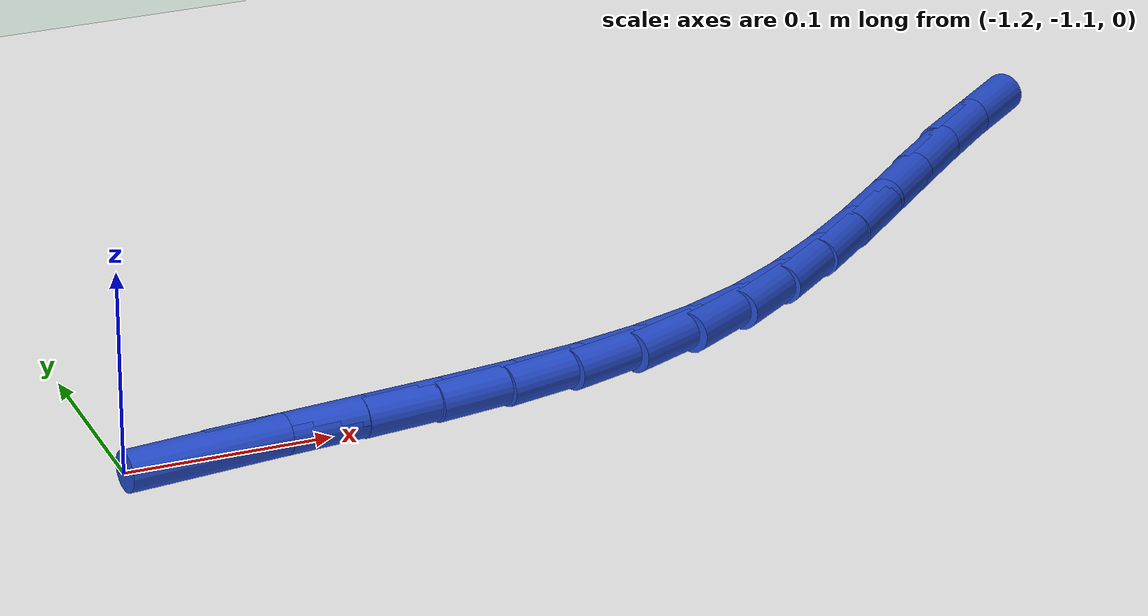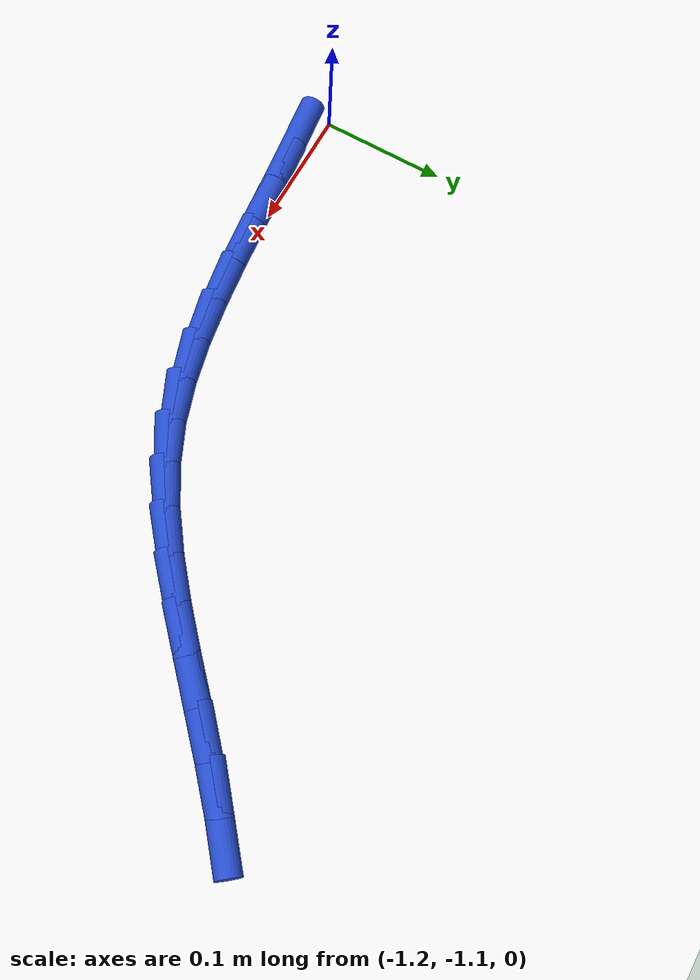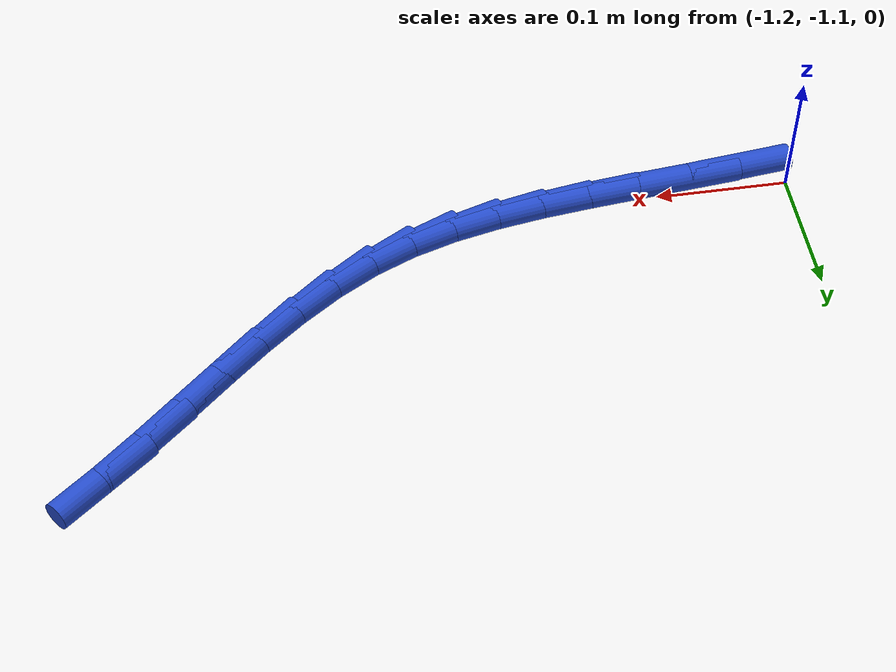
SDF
<sdf version="1.6">
 <world name="default">
  <model name="ground_plane">
   <static>1</static>
   <link name="link">
    <collision name="collision">
     <geometry><plane><normal>0 0 1</normal><size>100 100</size></plane></geometry>
     <surface><friction><ode><mu>100</mu><mu2>50</mu2></ode></friction></surface>
    </collision>
    <visual name="visual">
     <cast_shadows>0</cast_shadows>
     <geometry><plane><normal>0 0 1</normal><size>100 100</size></plane></geometry>
     <material>
      <script><uri>file://media/materials/scripts/gazebo.material</uri><name>Gazebo/WhiteGlow</name></script>
     </material>
    </visual>
   </link>
  </model>
  <model name="line">
   <link name="link_142">
    <pose>-1.1650176951432833 -1.1129570607806518 0.01 0 1.57 0.12006652093864123</pose>
    <collision name="collision">
     <geometry><cylinder><radius>0.01</radius><length>0.08</length></cylinder></geometry>
    </collision>
    <visual name="visual">
     <material>
      <script><name>Gazebo/Blue</name><uri>file://media/materials/scripts/gazebo.material</uri></script>
     </material>
     <geometry><cylinder><radius>0.01</radius><length>0.08</length></cylinder></geometry>
    </visual>
   </link>
   <link name="link_143">
    <pose>-1.1245382261327028 -1.1080733413318509 0.01 0 1.57 0.10370591710643588</pose>
    <collision name="collision">
     <geometry><cylinder><radius>0.01</radius><length>0.08</length></cylinder></geometry>
    </collision>
    <visual name="visual">
     <material>
      <script><name>Gazebo/Blue</name><uri>file://media/materials/scripts/gazebo.material</uri></script>
     </material>
     <geometry><cylinder><radius>0.01</radius><length>0.08</length></cylinder></geometry>
    </visual>
   </link>
   <link name="link_144">
    <pose>-1.085307008211927 -1.103990183383433 0.01 0 1.57 0.10452252812950566</pose>
    <collision name="collision">
     <geometry><cylinder><radius>0.01</radius><length>0.08</length></cylinder></geometry>
    </collision>
    <visual name="visual">
     <material>
      <script><name>Gazebo/Blue</name><uri>file://media/materials/scripts/gazebo.material</uri></script>
     </material>
     <geometry><cylinder><radius>0.01</radius><length>0.08</length></cylinder></geometry>
    </visual>
   </link>
   <link name="link_145">
    <pose>-1.0473598820505545 -1.1000093464256173 0.01 0 1.57 0.12445131192239939</pose>
    <collision name="collision">
     <geometry><cylinder><radius>0.01</radius><length>0.08</length></cylinder></geometry>
    </collision>
    <visual name="visual">
     <material>
      <script><name>Gazebo/Blue</name><uri>file://media/materials/scripts/gazebo.material</uri></script>
     </material>
     <geometry><cylinder><radius>0.01</radius><length>0.08</length></cylinder></geometry>
    </visual>
   </link>
   <link name="link_146">
    <pose>-1.0107306981475968 -1.095427115242311 0.01 0 1.57 0.16536312118033675</pose>
    <collision name="collision">
     <geometry><cylinder><radius>0.01</radius><length>0.08</length></cylinder></geometry>
    </collision>
    <visual name="visual">
     <material>
      <script><name>Gazebo/Blue</name><uri>file://media/materials/scripts/gazebo.material</uri></script>
     </material>
     <geometry><cylinder><radius>0.01</radius><length>0.08</length></cylinder></geometry>
    </visual>
   </link>
   <link name="link_147">
    <pose>-0.9754533070020672 -1.0895397746174196 0.01 0 1.57 0.2288986606989967</pose>
    <collision name="collision">
     <geometry><cylinder><radius>0.01</radius><length>0.08</length></cylinder></geometry>
    </collision>
    <visual name="visual">
     <material>
      <script><name>Gazebo/Blue</name><uri>file://media/materials/scripts/gazebo.material</uri></script>
     </material>
     <geometry><cylinder><radius>0.01</radius><length>0.08</length></cylinder></geometry>
    </visual>
   </link>
   <link name="link_148">
    <pose>-0.9415615591129791 -1.0816436093348492 0.01 0 1.57 0.3157692707805394</pose>
    <collision name="collision">
     <geometry><cylinder><radius>0.01</radius><length>0.08</length></cylinder></geometry>
    </collision>
    <visual name="visual">
     <material>
      <script><name>Gazebo/Blue</name><uri>file://media/materials/scripts/gazebo.material</uri></script>
     </material>
     <geometry><cylinder><radius>0.01</radius><length>0.08</length></cylinder></geometry>
    </visual>
   </link>
   <link name="link_149">
    <pose>-0.909089304979345 -1.0710349041785066 0.01 0 1.57 0.4244388689424818</pose>
    <collision name="collision">
     <geometry><cylinder><radius>0.01</radius><length>0.08</length></cylinder></geometry>
    </collision>
    <visual name="visual">
     <material>
      <script><name>Gazebo/Blue</name><uri>file://media/materials/scripts/gazebo.material</uri></script>
     </material>
     <geometry><cylinder><radius>0.01</radius><length>0.08</length></cylinder></geometry>
    </visual>
   </link>
   <link name="link_150">
    <pose>-0.8780687111653068 -1.0570164727601001 0.01 0 1.57 0.5363255797978354</pose>
    <collision name="collision">
     <geometry><cylinder><radius>0.01</radius><length>0.08</length></cylinder></geometry>
    </collision>
    <visual name="visual">
     <material>
      <script><name>Gazebo/Blue</name><uri>file://media/materials/scripts/gazebo.material</uri></script>
     </material>
     <geometry><cylinder><radius>0.01</radius><length>0.08</length></cylinder></geometry>
    </visual>
   </link>
   <link name="link_151">
    <pose>-0.8484050683479919 -1.0393830425014665 0.01 0 1.57 0.6245930428762201</pose>
    <collision name="collision">
     <geometry><cylinder><radius>0.01</radius><length>0.08</length></cylinder></geometry>
    </collision>
    <visual name="visual">
     <material>
      <script><name>Gazebo/Blue</name><uri>file://media/materials/scripts/gazebo.material</uri></script>
     </material>
     <geometry><cylinder><radius>0.01</radius><length>0.08</length></cylinder></geometry>
    </visual>
   </link>
   <link name="link_152">
    <pose>-0.819790508472829 -1.0187557841017219 0.01 0 1.57 0.6878436518231235</pose>
    <collision name="collision">
     <geometry><cylinder><radius>0.01</radius><length>0.08</length></cylinder></geometry>
    </collision>
    <visual name="visual">
     <material>
      <script><name>Gazebo/Blue</name><uri>file://media/materials/scripts/gazebo.material</uri></script>
     </material>
     <geometry><cylinder><radius>0.01</radius><length>0.08</length></cylinder></geometry>
    </visual>
   </link>
   <link name="link_153">
    <pose>-0.7918967531041649 -0.995835001880714 0.01 0 1.57 0.7280313142367961</pose>
    <collision name="collision">
     <geometry><cylinder><radius>0.01</radius><length>0.08</length></cylinder></geometry>
    </collision>
    <visual name="visual">
     <material>
      <script><name>Gazebo/Blue</name><uri>file://media/materials/scripts/gazebo.material</uri></script>
     </material>
     <geometry><cylinder><radius>0.01</radius><length>0.08</length></cylinder></geometry>
    </visual>
   </link>
   <link name="link_154">
    <pose>-0.7643955238063496 -0.9713210001582931 0.01 0 1.57 0.7470007885899308</pose>
    <collision name="collision">
     <geometry><cylinder><radius>0.01</radius><length>0.08</length></cylinder></geometry>
    </collision>
    <visual name="visual">
     <material>
      <script><name>Gazebo/Blue</name><uri>file://media/materials/scripts/gazebo.material</uri></script>
     </material>
     <geometry><cylinder><radius>0.01</radius><length>0.08</length></cylinder></geometry>
    </visual>
   </link>
   <link name="link_155">
    <pose>-0.7369585421437308 -0.9459140832543076 0.01 0 1.57 0.7459914934601541</pose>
    <collision name="collision">
     <geometry><cylinder><radius>0.01</radius><length>0.08</length></cylinder></geometry>
    </collision>
    <visual name="visual">
     <material>
      <script><name>Gazebo/Blue</name><uri>file://media/materials/scripts/gazebo.material</uri></script>
     </material>
     <geometry><cylinder><radius>0.01</radius><length>0.08</length></cylinder></geometry>
    </visual>
   </link>
   <link name="link_156">
    <pose>-0.7092575296806574 -0.9203145554886063 0.01 0 1.57 0.7255002817400079</pose>
    <collision name="collision">
     <geometry><cylinder><radius>0.01</radius><length>0.08</length></cylinder></geometry>
    </collision>
    <visual name="visual">
     <material>
      <script><name>Gazebo/Blue</name><uri>file://media/materials/scripts/gazebo.material</uri></script>
     </material>
     <geometry><cylinder><radius>0.01</radius><length>0.08</length></cylinder></geometry>
    </visual>
   </link>
   <link name="link_157">
    <pose>-0.6809642079814777 -0.8952227211810382 0.01 0 1.57 0.6853510293611904</pose>
    <collision name="collision">
     <geometry><cylinder><radius>0.01</radius><length>0.08</length></cylinder></geometry>
    </collision>
    <visual name="visual">
     <material>
      <script><name>Gazebo/Blue</name><uri>file://media/materials/scripts/gazebo.material</uri></script>
     </material>
     <geometry><cylinder><radius>0.01</radius><length>0.08</length></cylinder></geometry>
    </visual>
   </link>
  </model>
 </world>
</sdf>
